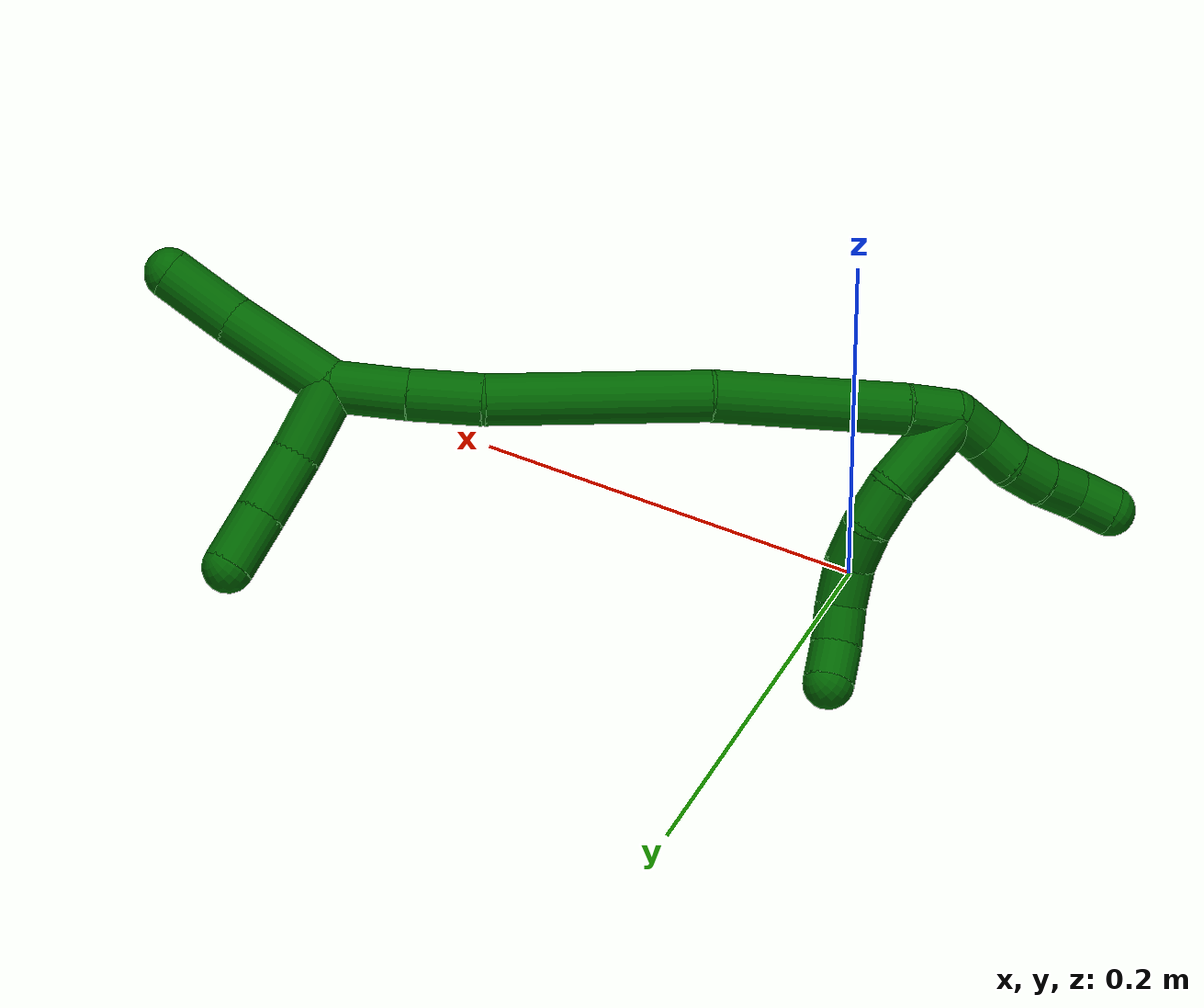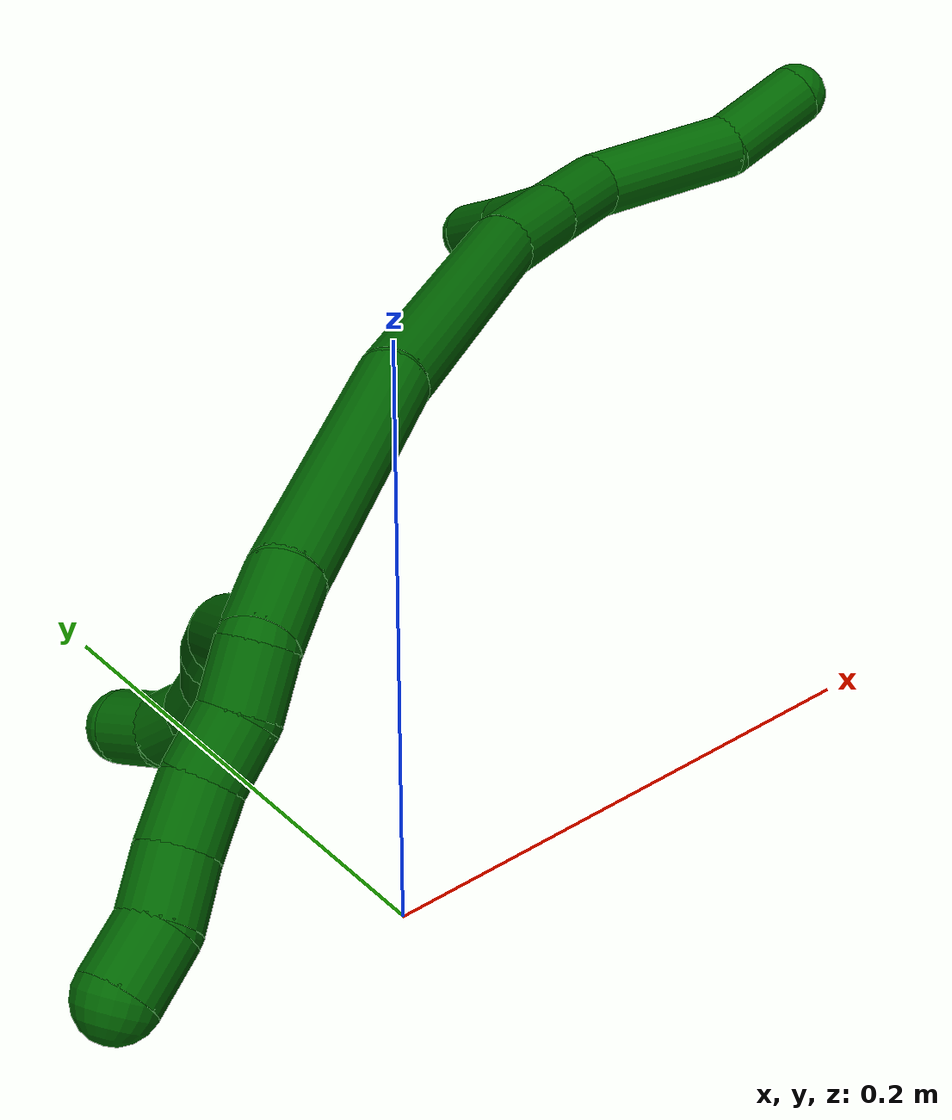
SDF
<sdf version="1.7">
 <world name="default">
  <model name="photoneo_s_sensor">
   <static>1</static>
   <pose>0 0 2 1.57079 1.57079 3.14159</pose>
   <link name="link">
    <inertial><mass>0.1</mass></inertial>
    <sensor name="sensor" type="depth">
     <update_rate>30</update_rate>
     <camera>
      <horizontal_fov>1.22</horizontal_fov>
      <image><width>1920</width><height>1200</height><format>B8G8R8</format></image>
      <clip><near>0.1</near><far>4</far></clip>
      <depth_camera><output>points</output></depth_camera>
     </camera>
     <plugin name="camera_plugin" filename="libgazebo_ros_depth_camera.so">
      <baseline>0.2</baseline>
      <alwaysOn>1</alwaysOn>
      <updateRate>0.0</updateRate>
      <cameraName>camera_ir</cameraName>
      <imageTopicName>/camera/color/image_raw</imageTopicName>
      <cameraInfoTopicName>/camera/color/camera_info</cameraInfoTopicName>
      <depthImageTopicName>/camera/depth/image_raw</depthImageTopicName>
      <depthImageCameraInfoTopicName>/camera/depth/camera_info</depthImageCameraInfoTopicName>
      <pointCloudTopicName>/camera/depth/points</pointCloudTopicName>
      <frameName>fr_optical</frameName>
      <pointCloudCutoff>0.1</pointCloudCutoff>
      <pointCloudCutoffMax>2.0</pointCloudCutoffMax>
      <distortionK1>0</distortionK1>
      <distortionK2>0</distortionK2>
      <distortionK3>0</distortionK3>
      <distortionT1>0</distortionT1>
      <distortionT2>0</distortionT2>
      <CxPrime>0</CxPrime>
      <Cx>0</Cx>
      <Cy>0</Cy>
      <focalLength>0</focalLength>
      <hackBaseline>0</hackBaseline>
     </plugin>
    </sensor>
   </link>
  </model>
  <model name="bin">
   <static>1</static>
   <link name="bottom">
    <collision name="collision-bottom">
     <pose>0 0 -0.01 0 -0 0</pose>
     <geometry><box><size>0.8 0.6 0.02</size></box></geometry>
     <surface>
      <friction><ode><mu>100</mu><mu2>100</mu2></ode></friction>
      <contact><collide_bitmask>65535</collide_bitmask></contact>
     </surface>
    </collision>
   </link>
   <link name="west_wall">
    <collision name="collision-west_wall">
     <pose>-0.41 0 0.1 0 -0 0</pose>
     <geometry><box><size>0.02 0.6 0.2</size></box></geometry>
     <surface>
      <friction><ode><mu>100</mu><mu2>100</mu2></ode></friction>
      <contact><collide_bitmask>65535</collide_bitmask></contact>
     </surface>
    </collision>
   </link>
   <link name="east_wall">
    <collision name="collision-east_wall">
     <pose>0.41 0 0.1 0 -0 0</pose>
     <geometry><box><size>0.02 0.6 0.2</size></box></geometry>
     <surface>
      <friction><ode><mu>100</mu><mu2>100</mu2></ode></friction>
      <contact><collide_bitmask>65535</collide_bitmask></contact>
     </surface>
    </collision>
   </link>
   <link name="south_wall">
    <collision name="collision-south_wall">
     <pose>0 -0.31 0.1 0 -0 0</pose>
     <geometry><box><size>0.8 0.02 0.2</size></box></geometry>
     <surface>
      <friction><ode><mu>100</mu><mu2>100</mu2></ode></friction>
      <contact><collide_bitmask>65535</collide_bitmask></contact>
     </surface>
    </collision>
   </link>
   <link name="north_wall">
    <collision name="collision-north_wall">
     <pose>0 0.31 0.1 0 -0 0</pose>
     <geometry><box><size>0.8 0.02 0.2</size></box></geometry>
     <surface>
      <friction><ode><mu>100</mu><mu2>100</mu2></ode></friction>
      <contact><collide_bitmask>65535</collide_bitmask></contact>
     </surface>
    </collision>
   </link>
  </model>
  <model name="6">
   <static>0</static>
   <link name="6">
    <collision name="collision-cylinder-e_1_2_8">
     <pose>0.009165 -0.020526 -0.002473 1.69072 0.417254 0.468725</pose>
     <geometry><cylinder><radius>0.0125</radius><length>0.04523</length></cylinder></geometry>
     <surface>
      <friction><ode><mu>1.16</mu><mu2>1.16</mu2><slip1>0</slip1><slip2>0</slip2></ode></friction>
      <contact><ode><kp>1e+06</kp><kd>1</kd><max_vel>0</max_vel><min_depth>0.001</min_depth></ode></contact>
     </surface>
    </collision>
    <visual name="visual-cylinder-e_1_2_8">
     <pose>0.009165 -0.020526 -0.002473 1.69072 0.417254 0.468725</pose>
     <geometry><cylinder><radius>0.0125</radius><length>0.04523</length></cylinder></geometry>
     <material><ambient>0 0.392157 0.003922 1</ambient></material>
    </visual>
    <collision name="collision-cylinder-e_2_8_9">
     <pose>0.02428 -0.050685 -0.003341 1.40555 0.547247 0.466802</pose>
     <geometry><cylinder><radius>0.0125</radius><length>0.02287</length></cylinder></geometry>
     <surface>
      <friction><ode><mu>1.16</mu><mu2>1.16</mu2><slip1>0</slip1><slip2>0</slip2></ode></friction>
      <contact><ode><kp>1e+06</kp><kd>1</kd><max_vel>0</max_vel><min_depth>0.001</min_depth></ode></contact>
     </surface>
    </collision>
    <visual name="visual-cylinder-e_2_8_9">
     <pose>0.02428 -0.050685 -0.003341 1.40555 0.547247 0.466802</pose>
     <geometry><cylinder><radius>0.0125</radius><length>0.02287</length></cylinder></geometry>
     <material><ambient>0 0.392157 0.003922 1</ambient></material>
    </visual>
    <collision name="collision-cylinder-e_3_9_10">
     <pose>0.036653 -0.067428 0.002417 1.04242 0.662488 0.389917</pose>
     <geometry><cylinder><radius>0.0125</radius><length>0.020886</length></cylinder></geometry>
     <surface>
      <friction><ode><mu>1.16</mu><mu2>1.16</mu2><slip1>0</slip1><slip2>0</slip2></ode></friction>
      <contact><ode><kp>1e+06</kp><kd>1</kd><max_vel>0</max_vel><min_depth>0.001</min_depth></ode></contact>
     </surface>
    </collision>
    <visual name="visual-cylinder-e_3_9_10">
     <pose>0.036653 -0.067428 0.002417 1.04242 0.662488 0.389917</pose>
     <geometry><cylinder><radius>0.0125</radius><length>0.020886</length></cylinder></geometry>
     <material><ambient>0 0.392157 0.003922 1</ambient></material>
    </visual>
    <collision name="collision-cylinder-e_4_10_11">
     <pose>0.046706 -0.083134 0.011252 1.07184 0.355046 0.212302</pose>
     <geometry><cylinder><radius>0.0125</radius><length>0.02088</length></cylinder></geometry>
     <surface>
      <friction><ode><mu>1.16</mu><mu2>1.16</mu2><slip1>0</slip1><slip2>0</slip2></ode></friction>
      <contact><ode><kp>1e+06</kp><kd>1</kd><max_vel>0</max_vel><min_depth>0.001</min_depth></ode></contact>
     </surface>
    </collision>
    <visual name="visual-cylinder-e_4_10_11">
     <pose>0.046706 -0.083134 0.011252 1.07184 0.355046 0.212302</pose>
     <geometry><cylinder><radius>0.0125</radius><length>0.02088</length></cylinder></geometry>
     <material><ambient>0 0.392157 0.003922 1</ambient></material>
    </visual>
    <collision name="collision-cylinder-e_5_11_12">
     <pose>0.05092 -0.101104 0.019493 1.20816 0.058316 0.040252</pose>
     <geometry><cylinder><radius>0.0125</radius><length>0.020087</length></cylinder></geometry>
     <surface>
      <friction><ode><mu>1.16</mu><mu2>1.16</mu2><slip1>0</slip1><slip2>0</slip2></ode></friction>
      <contact><ode><kp>1e+06</kp><kd>1</kd><max_vel>0</max_vel><min_depth>0.001</min_depth></ode></contact>
     </surface>
    </collision>
    <visual name="visual-cylinder-e_5_11_12">
     <pose>0.05092 -0.101104 0.019493 1.20816 0.058316 0.040252</pose>
     <geometry><cylinder><radius>0.0125</radius><length>0.020087</length></cylinder></geometry>
     <material><ambient>0 0.392157 0.003922 1</ambient></material>
    </visual>
    <collision name="collision-cylinder-e_6_12_6">
     <pose>0.050097 -0.120369 0.023857 1.4893 -0.140992 -0.129978</pose>
     <geometry><cylinder><radius>0.0125</radius><length>0.020047</length></cylinder></geometry>
     <surface>
      <friction><ode><mu>1.16</mu><mu2>1.16</mu2><slip1>0</slip1><slip2>0</slip2></ode></friction>
      <contact><ode><kp>1e+06</kp><kd>1</kd><max_vel>0</max_vel><min_depth>0.001</min_depth></ode></contact>
     </surface>
    </collision>
    <visual name="visual-cylinder-e_6_12_6">
     <pose>0.050097 -0.120369 0.023857 1.4893 -0.140992 -0.129978</pose>
     <geometry><cylinder><radius>0.0125</radius><length>0.020047</length></cylinder></geometry>
     <material><ambient>0 0.392157 0.003922 1</ambient></material>
    </visual>
    <collision name="collision-cylinder-e_1_2_13">
     <pose>3e-05 -1e-05 0.01 0.000991 0.003029 2e-06</pose>
     <geometry><cylinder><radius>0.0125</radius><length>0.02</length></cylinder></geometry>
     <surface>
      <friction><ode><mu>1.16</mu><mu2>1.16</mu2><slip1>0</slip1><slip2>0</slip2></ode></friction>
      <contact><ode><kp>1e+06</kp><kd>1</kd><max_vel>0</max_vel><min_depth>0.001</min_depth></ode></contact>
     </surface>
    </collision>
    <visual name="visual-cylinder-e_1_2_13">
     <pose>3e-05 -1e-05 0.01 0.000991 0.003029 2e-06</pose>
     <geometry><cylinder><radius>0.0125</radius><length>0.02</length></cylinder></geometry>
     <material><ambient>0 0.392157 0.003922 1</ambient></material>
    </visual>
    <collision name="collision-cylinder-e_2_13_14">
     <pose>-0.001757 -0.001538 0.029716 0.154999 -0.182743 -0.01423</pose>
     <geometry><cylinder><radius>0.0125</radius><length>0.02</length></cylinder></geometry>
     <surface>
      <friction><ode><mu>1.16</mu><mu2>1.16</mu2><slip1>0</slip1><slip2>0</slip2></ode></friction>
      <contact><ode><kp>1e+06</kp><kd>1</kd><max_vel>0</max_vel><min_depth>0.001</min_depth></ode></contact>
     </surface>
    </collision>
    <visual name="visual-cylinder-e_2_13_14">
     <pose>-0.001757 -0.001538 0.029716 0.154999 -0.182743 -0.01423</pose>
     <geometry><cylinder><radius>0.0125</radius><length>0.02</length></cylinder></geometry>
     <material><ambient>0 0.392157 0.003922 1</ambient></material>
    </visual>
    <collision name="collision-cylinder-e_3_14_15">
     <pose>-0.004938 -0.002222 0.049303 -0.084274 -0.136799 0.005777</pose>
     <geometry><cylinder><radius>0.0125</radius><length>0.02</length></cylinder></geometry>
     <surface>
      <friction><ode><mu>1.16</mu><mu2>1.16</mu2><slip1>0</slip1><slip2>0</slip2></ode></friction>
      <contact><ode><kp>1e+06</kp><kd>1</kd><max_vel>0</max_vel><min_depth>0.001</min_depth></ode></contact>
     </surface>
    </collision>
    <visual name="visual-cylinder-e_3_14_15">
     <pose>-0.004938 -0.002222 0.049303 -0.084274 -0.136799 0.005777</pose>
     <geometry><cylinder><radius>0.0125</radius><length>0.02</length></cylinder></geometry>
     <material><ambient>0 0.392157 0.003922 1</ambient></material>
    </visual>
    <collision name="collision-cylinder-e_4_15_16">
     <pose>-0.007572 0.000727 0.068865 -0.214902 -0.127398 0.01376</pose>
     <geometry><cylinder><radius>0.0125</radius><length>0.02</length></cylinder></geometry>
     <surface>
      <friction><ode><mu>1.16</mu><mu2>1.16</mu2><slip1>0</slip1><slip2>0</slip2></ode></friction>
      <contact><ode><kp>1e+06</kp><kd>1</kd><max_vel>0</max_vel><min_depth>0.001</min_depth></ode></contact>
     </surface>
    </collision>
    <visual name="visual-cylinder-e_4_15_16">
     <pose>-0.007572 0.000727 0.068865 -0.214902 -0.127398 0.01376</pose>
     <geometry><cylinder><radius>0.0125</radius><length>0.02</length></cylinder></geometry>
     <material><ambient>0 0.392157 0.003922 1</ambient></material>
    </visual>
    <collision name="collision-cylinder-e_5_16_5">
     <pose>-0.01239 0.003332 0.087892 -0.052365 -0.362663 0.009603</pose>
     <geometry><cylinder><radius>0.0125</radius><length>0.02</length></cylinder></geometry>
     <surface>
      <friction><ode><mu>1.16</mu><mu2>1.16</mu2><slip1>0</slip1><slip2>0</slip2></ode></friction>
      <contact><ode><kp>1e+06</kp><kd>1</kd><max_vel>0</max_vel><min_depth>0.001</min_depth></ode></contact>
     </surface>
    </collision>
    <visual name="visual-cylinder-e_5_16_5">
     <pose>-0.01239 0.003332 0.087892 -0.052365 -0.362663 0.009603</pose>
     <geometry><cylinder><radius>0.0125</radius><length>0.02</length></cylinder></geometry>
     <material><ambient>0 0.392157 0.003922 1</ambient></material>
    </visual>
    <collision name="collision-cylinder-e_1_2_17">
     <pose>0.004563 -0.004383 -0.010748 2.75436 0.374545 1.53668</pose>
     <geometry><cylinder><radius>0.0125</radius><length>0.024944</length></cylinder></geometry>
     <surface>
      <friction><ode><mu>1.16</mu><mu2>1.16</mu2><slip1>0</slip1><slip2>0</slip2></ode></friction>
      <contact><ode><kp>1e+06</kp><kd>1</kd><max_vel>0</max_vel><min_depth>0.001</min_depth></ode></contact>
     </surface>
    </collision>
    <visual name="visual-cylinder-e_1_2_17">
     <pose>0.004563 -0.004383 -0.010748 2.75436 0.374545 1.53668</pose>
     <geometry><cylinder><radius>0.0125</radius><length>0.024944</length></cylinder></geometry>
     <material><ambient>0 0.392157 0.003922 1</ambient></material>
    </visual>
    <collision name="collision-cylinder-e_2_17_18">
     <pose>0.031604 -0.026118 -0.059642 2.71469 0.492327 1.71799</pose>
     <geometry><cylinder><radius>0.0125</radius><length>0.095111</length></cylinder></geometry>
     <surface>
      <friction><ode><mu>1.16</mu><mu2>1.16</mu2><slip1>0</slip1><slip2>0</slip2></ode></friction>
      <contact><ode><kp>1e+06</kp><kd>1</kd><max_vel>0</max_vel><min_depth>0.001</min_depth></ode></contact>
     </surface>
    </collision>
    <visual name="visual-cylinder-e_2_17_18">
     <pose>0.031604 -0.026118 -0.059642 2.71469 0.492327 1.71799</pose>
     <geometry><cylinder><radius>0.0125</radius><length>0.095111</length></cylinder></geometry>
     <material><ambient>0 0.392157 0.003922 1</ambient></material>
    </visual>
    <collision name="collision-cylinder-e_3_18_19">
     <pose>0.085816 -0.064503 -0.135779 2.63596 0.631093 1.80268</pose>
     <geometry><cylinder><radius>0.0125</radius><length>0.107568</length></cylinder></geometry>
     <surface>
      <friction><ode><mu>1.16</mu><mu2>1.16</mu2><slip1>0</slip1><slip2>0</slip2></ode></friction>
      <contact><ode><kp>1e+06</kp><kd>1</kd><max_vel>0</max_vel><min_depth>0.001</min_depth></ode></contact>
     </surface>
    </collision>
    <visual name="visual-cylinder-e_3_18_19">
     <pose>0.085816 -0.064503 -0.135779 2.63596 0.631093 1.80268</pose>
     <geometry><cylinder><radius>0.0125</radius><length>0.107568</length></cylinder></geometry>
     <material><ambient>0 0.392157 0.003922 1</ambient></material>
    </visual>
    <collision name="collision-cylinder-e_4_19_20">
     <pose>0.130068 -0.090052 -0.185654 2.77847 0.777626 2.299</pose>
     <geometry><cylinder><radius>0.0125</radius><length>0.035684</length></cylinder></geometry>
     <surface>
      <friction><ode><mu>1.16</mu><mu2>1.16</mu2><slip1>0</slip1><slip2>0</slip2></ode></friction>
      <contact><ode><kp>1e+06</kp><kd>1</kd><max_vel>0</max_vel><min_depth>0.001</min_depth></ode></contact>
     </surface>
    </collision>
    <visual name="visual-cylinder-e_4_19_20">
     <pose>0.130068 -0.090052 -0.185654 2.77847 0.777626 2.299</pose>
     <geometry><cylinder><radius>0.0125</radius><length>0.035684</length></cylinder></geometry>
     <material><ambient>0 0.392157 0.003922 1</ambient></material>
    </visual>
    <collision name="collision-cylinder-e_5_20_1">
     <pose>0.155569 -0.09843 -0.209913 2.83906 0.786179 2.43707</pose>
     <geometry><cylinder><radius>0.0125</radius><length>0.036694</length></cylinder></geometry>
     <surface>
      <friction><ode><mu>1.16</mu><mu2>1.16</mu2><slip1>0</slip1><slip2>0</slip2></ode></friction>
      <contact><ode><kp>1e+06</kp><kd>1</kd><max_vel>0</max_vel><min_depth>0.001</min_depth></ode></contact>
     </surface>
    </collision>
    <visual name="visual-cylinder-e_5_20_1">
     <pose>0.155569 -0.09843 -0.209913 2.83906 0.786179 2.43707</pose>
     <geometry><cylinder><radius>0.0125</radius><length>0.036694</length></cylinder></geometry>
     <material><ambient>0 0.392157 0.003922 1</ambient></material>
    </visual>
    <collision name="collision-cylinder-e_1_1_21">
     <pose>0.19137 -0.092563 -0.2401 -2.64165 0.8438 -2.10725</pose>
     <geometry><cylinder><radius>0.0125</radius><length>0.061076</length></cylinder></geometry>
     <surface>
      <friction><ode><mu>1.16</mu><mu2>1.16</mu2><slip1>0</slip1><slip2>0</slip2></ode></friction>
      <contact><ode><kp>1e+06</kp><kd>1</kd><max_vel>0</max_vel><min_depth>0.001</min_depth></ode></contact>
     </surface>
    </collision>
    <visual name="visual-cylinder-e_1_1_21">
     <pose>0.19137 -0.092563 -0.2401 -2.64165 0.8438 -2.10725</pose>
     <geometry><cylinder><radius>0.0125</radius><length>0.061076</length></cylinder></geometry>
     <material><ambient>0 0.392157 0.003922 1</ambient></material>
    </visual>
    <collision name="collision-cylinder-e_2_21_4">
     <pose>0.224742 -0.077778 -0.273462 -2.82726 0.573244 -2.15493</pose>
     <geometry><cylinder><radius>0.0125</radius><length>0.038924</length></cylinder></geometry>
     <surface>
      <friction><ode><mu>1.16</mu><mu2>1.16</mu2><slip1>0</slip1><slip2>0</slip2></ode></friction>
      <contact><ode><kp>1e+06</kp><kd>1</kd><max_vel>0</max_vel><min_depth>0.001</min_depth></ode></contact>
     </surface>
    </collision>
    <visual name="visual-cylinder-e_2_21_4">
     <pose>0.224742 -0.077778 -0.273462 -2.82726 0.573244 -2.15493</pose>
     <geometry><cylinder><radius>0.0125</radius><length>0.038924</length></cylinder></geometry>
     <material><ambient>0 0.392157 0.003922 1</ambient></material>
    </visual>
    <collision name="collision-cylinder-e_1_1_22">
     <pose>0.174188 -0.119984 -0.220601 1.47573 0.307053 0.279548</pose>
     <geometry><cylinder><radius>0.0125</radius><length>0.037288</length></cylinder></geometry>
     <surface>
      <friction><ode><mu>1.16</mu><mu2>1.16</mu2><slip1>0</slip1><slip2>0</slip2></ode></friction>
      <contact><ode><kp>1e+06</kp><kd>1</kd><max_vel>0</max_vel><min_depth>0.001</min_depth></ode></contact>
     </surface>
    </collision>
    <visual name="visual-cylinder-e_1_1_22">
     <pose>0.174188 -0.119984 -0.220601 1.47573 0.307053 0.279548</pose>
     <geometry><cylinder><radius>0.0125</radius><length>0.037288</length></cylinder></geometry>
     <material><ambient>0 0.392157 0.003922 1</ambient></material>
    </visual>
    <collision name="collision-cylinder-e_2_22_23">
     <pose>0.183406 -0.154008 -0.219302 1.59456 0.215913 0.221064</pose>
     <geometry><cylinder><radius>0.0125</radius><length>0.033449</length></cylinder></geometry>
     <surface>
      <friction><ode><mu>1.16</mu><mu2>1.16</mu2><slip1>0</slip1><slip2>0</slip2></ode></friction>
      <contact><ode><kp>1e+06</kp><kd>1</kd><max_vel>0</max_vel><min_depth>0.001</min_depth></ode></contact>
     </surface>
    </collision>
    <visual name="visual-cylinder-e_2_22_23">
     <pose>0.183406 -0.154008 -0.219302 1.59456 0.215913 0.221064</pose>
     <geometry><cylinder><radius>0.0125</radius><length>0.033449</length></cylinder></geometry>
     <material><ambient>0 0.392157 0.003922 1</ambient></material>
    </visual>
    <collision name="collision-cylinder-e_3_23_3">
     <pose>0.1898 -0.184683 -0.220342 1.61624 0.193324 0.202256</pose>
     <geometry><cylinder><radius>0.0125</radius><length>0.029263</length></cylinder></geometry>
     <surface>
      <friction><ode><mu>1.16</mu><mu2>1.16</mu2><slip1>0</slip1><slip2>0</slip2></ode></friction>
      <contact><ode><kp>1e+06</kp><kd>1</kd><max_vel>0</max_vel><min_depth>0.001</min_depth></ode></contact>
     </surface>
    </collision>
    <visual name="visual-cylinder-e_3_23_3">
     <pose>0.1898 -0.184683 -0.220342 1.61624 0.193324 0.202256</pose>
     <geometry><cylinder><radius>0.0125</radius><length>0.029263</length></cylinder></geometry>
     <material><ambient>0 0.392157 0.003922 1</ambient></material>
    </visual>
    <collision name="collision-sphere-3">
     <pose>0.192611 -0.199027 -0.220995 0 -0 0</pose>
     <geometry><sphere><radius>0.0125</radius></sphere></geometry>
     <surface>
      <friction><ode><mu>1.16</mu><mu2>1.16</mu2><slip1>0</slip1><slip2>0</slip2></ode></friction>
      <contact><ode><kp>1e+06</kp><kd>1</kd><max_vel>0</max_vel><min_depth>0.001</min_depth></ode></contact>
     </surface>
    </collision>
    <visual name="visual-sphere-3">
     <pose>0.192611 -0.199027 -0.220995 0 -0 0</pose>
     <geometry><sphere><radius>0.0125</radius></sphere></geometry>
     <material><ambient>0 0.392157 0.003922 1</ambient></material>
    </visual>
    <collision name="collision-sphere-23">
     <pose>0.186989 -0.170339 -0.21969 0 -0 0</pose>
     <geometry><sphere><radius>0.0125</radius></sphere></geometry>
     <surface>
      <friction><ode><mu>1.16</mu><mu2>1.16</mu2><slip1>0</slip1><slip2>0</slip2></ode></friction>
      <contact><ode><kp>1e+06</kp><kd>1</kd><max_vel>0</max_vel><min_depth>0.001</min_depth></ode></contact>
     </surface>
    </collision>
    <visual name="visual-sphere-23">
     <pose>0.186989 -0.170339 -0.21969 0 -0 0</pose>
     <geometry><sphere><radius>0.0125</radius></sphere></geometry>
     <material><ambient>0 0.392157 0.003922 1</ambient></material>
    </visual>
    <collision name="collision-sphere-22">
     <pose>0.179823 -0.137676 -0.218914 0 -0 0</pose>
     <geometry><sphere><radius>0.0125</radius></sphere></geometry>
     <surface>
      <friction><ode><mu>1.16</mu><mu2>1.16</mu2><slip1>0</slip1><slip2>0</slip2></ode></friction>
      <contact><ode><kp>1e+06</kp><kd>1</kd><max_vel>0</max_vel><min_depth>0.001</min_depth></ode></contact>
     </surface>
    </collision>
    <visual name="visual-sphere-22">
     <pose>0.179823 -0.137676 -0.218914 0 -0 0</pose>
     <geometry><sphere><radius>0.0125</radius></sphere></geometry>
     <material><ambient>0 0.392157 0.003922 1</ambient></material>
    </visual>
    <collision name="collision-sphere-4">
     <pose>0.235298 -0.072722 -0.289012 0 -0 0</pose>
     <geometry><sphere><radius>0.0125</radius></sphere></geometry>
     <surface>
      <friction><ode><mu>1.16</mu><mu2>1.16</mu2><slip1>0</slip1><slip2>0</slip2></ode></friction>
      <contact><ode><kp>1e+06</kp><kd>1</kd><max_vel>0</max_vel><min_depth>0.001</min_depth></ode></contact>
     </surface>
    </collision>
    <visual name="visual-sphere-4">
     <pose>0.235298 -0.072722 -0.289012 0 -0 0</pose>
     <geometry><sphere><radius>0.0125</radius></sphere></geometry>
     <material><ambient>0 0.392157 0.003922 1</ambient></material>
    </visual>
    <collision name="collision-sphere-21">
     <pose>0.214187 -0.082833 -0.257912 0 -0 0</pose>
     <geometry><sphere><radius>0.0125</radius></sphere></geometry>
     <surface>
      <friction><ode><mu>1.16</mu><mu2>1.16</mu2><slip1>0</slip1><slip2>0</slip2></ode></friction>
      <contact><ode><kp>1e+06</kp><kd>1</kd><max_vel>0</max_vel><min_depth>0.001</min_depth></ode></contact>
     </surface>
    </collision>
    <visual name="visual-sphere-21">
     <pose>0.214187 -0.082833 -0.257912 0 -0 0</pose>
     <geometry><sphere><radius>0.0125</radius></sphere></geometry>
     <material><ambient>0 0.392157 0.003922 1</ambient></material>
    </visual>
    <collision name="collision-sphere-1">
     <pose>0.168552 -0.102292 -0.222288 0 -0 0</pose>
     <geometry><sphere><radius>0.0125</radius></sphere></geometry>
     <surface>
      <friction><ode><mu>1.16</mu><mu2>1.16</mu2><slip1>0</slip1><slip2>0</slip2></ode></friction>
      <contact><ode><kp>1e+06</kp><kd>1</kd><max_vel>0</max_vel><min_depth>0.001</min_depth></ode></contact>
     </surface>
    </collision>
    <visual name="visual-sphere-1">
     <pose>0.168552 -0.102292 -0.222288 0 -0 0</pose>
     <geometry><sphere><radius>0.0125</radius></sphere></geometry>
     <material><ambient>0 0.392157 0.003922 1</ambient></material>
    </visual>
    <collision name="collision-sphere-12">
     <pose>0.051506 -0.110478 0.02305 0 -0 0</pose>
     <geometry><sphere><radius>0.0125</radius></sphere></geometry>
     <surface>
      <friction><ode><mu>1.16</mu><mu2>1.16</mu2><slip1>0</slip1><slip2>0</slip2></ode></friction>
      <contact><ode><kp>1e+06</kp><kd>1</kd><max_vel>0</max_vel><min_depth>0.001</min_depth></ode></contact>
     </surface>
    </collision>
    <visual name="visual-sphere-12">
     <pose>0.051506 -0.110478 0.02305 0 -0 0</pose>
     <geometry><sphere><radius>0.0125</radius></sphere></geometry>
     <material><ambient>0 0.392157 0.003922 1</ambient></material>
    </visual>
    <collision name="collision-sphere-11">
     <pose>0.050335 -0.091729 0.015936 0 -0 0</pose>
     <geometry><sphere><radius>0.0125</radius></sphere></geometry>
     <surface>
      <friction><ode><mu>1.16</mu><mu2>1.16</mu2><slip1>0</slip1><slip2>0</slip2></ode></friction>
      <contact><ode><kp>1e+06</kp><kd>1</kd><max_vel>0</max_vel><min_depth>0.001</min_depth></ode></contact>
     </surface>
    </collision>
    <visual name="visual-sphere-11">
     <pose>0.050335 -0.091729 0.015936 0 -0 0</pose>
     <geometry><sphere><radius>0.0125</radius></sphere></geometry>
     <material><ambient>0 0.392157 0.003922 1</ambient></material>
    </visual>
    <collision name="collision-sphere-10">
     <pose>0.043076 -0.074539 0.006568 0 -0 0</pose>
     <geometry><sphere><radius>0.0125</radius></sphere></geometry>
     <surface>
      <friction><ode><mu>1.16</mu><mu2>1.16</mu2><slip1>0</slip1><slip2>0</slip2></ode></friction>
      <contact><ode><kp>1e+06</kp><kd>1</kd><max_vel>0</max_vel><min_depth>0.001</min_depth></ode></contact>
     </surface>
    </collision>
    <visual name="visual-sphere-10">
     <pose>0.043076 -0.074539 0.006568 0 -0 0</pose>
     <geometry><sphere><radius>0.0125</radius></sphere></geometry>
     <material><ambient>0 0.392157 0.003922 1</ambient></material>
    </visual>
    <collision name="collision-sphere-9">
     <pose>0.03023 -0.060317 -0.001734 0 -0 0</pose>
     <geometry><sphere><radius>0.0125</radius></sphere></geometry>
     <surface>
      <friction><ode><mu>1.16</mu><mu2>1.16</mu2><slip1>0</slip1><slip2>0</slip2></ode></friction>
      <contact><ode><kp>1e+06</kp><kd>1</kd><max_vel>0</max_vel><min_depth>0.001</min_depth></ode></contact>
     </surface>
    </collision>
    <visual name="visual-sphere-9">
     <pose>0.03023 -0.060317 -0.001734 0 -0 0</pose>
     <geometry><sphere><radius>0.0125</radius></sphere></geometry>
     <material><ambient>0 0.392157 0.003922 1</ambient></material>
    </visual>
    <collision name="collision-sphere-2">
     <geometry><sphere><radius>0.0125</radius></sphere></geometry>
     <surface>
      <friction><ode><mu>1.16</mu><mu2>1.16</mu2><slip1>0</slip1><slip2>0</slip2></ode></friction>
      <contact><ode><kp>1e+06</kp><kd>1</kd><max_vel>0</max_vel><min_depth>0.001</min_depth></ode></contact>
     </surface>
    </collision>
    <visual name="visual-sphere-2">
     <geometry><sphere><radius>0.0125</radius></sphere></geometry>
     <material><ambient>0 0.392157 0.003922 1</ambient></material>
    </visual>
    <collision name="collision-sphere-19">
     <pose>0.11755 -0.085536 -0.173769 0 -0 0</pose>
     <geometry><sphere><radius>0.0125</radius></sphere></geometry>
     <surface>
      <friction><ode><mu>1.16</mu><mu2>1.16</mu2><slip1>0</slip1><slip2>0</slip2></ode></friction>
      <contact><ode><kp>1e+06</kp><kd>1</kd><max_vel>0</max_vel><min_depth>0.001</min_depth></ode></contact>
     </surface>
    </collision>
    <visual name="visual-sphere-19">
     <pose>0.11755 -0.085536 -0.173769 0 -0 0</pose>
     <geometry><sphere><radius>0.0125</radius></sphere></geometry>
     <material><ambient>0 0.392157 0.003922 1</ambient></material>
    </visual>
    <collision name="collision-sphere-8">
     <pose>0.01833 -0.041053 -0.004947 0 -0 0</pose>
     <geometry><sphere><radius>0.0125</radius></sphere></geometry>
     <surface>
      <friction><ode><mu>1.16</mu><mu2>1.16</mu2><slip1>0</slip1><slip2>0</slip2></ode></friction>
      <contact><ode><kp>1e+06</kp><kd>1</kd><max_vel>0</max_vel><min_depth>0.001</min_depth></ode></contact>
     </surface>
    </collision>
    <visual name="visual-sphere-8">
     <pose>0.01833 -0.041053 -0.004947 0 -0 0</pose>
     <geometry><sphere><radius>0.0125</radius></sphere></geometry>
     <material><ambient>0 0.392157 0.003922 1</ambient></material>
    </visual>
    <collision name="collision-sphere-6">
     <pose>0.048688 -0.13026 0.024665 0 -0 0</pose>
     <geometry><sphere><radius>0.0125</radius></sphere></geometry>
     <surface>
      <friction><ode><mu>1.16</mu><mu2>1.16</mu2><slip1>0</slip1><slip2>0</slip2></ode></friction>
      <contact><ode><kp>1e+06</kp><kd>1</kd><max_vel>0</max_vel><min_depth>0.001</min_depth></ode></contact>
     </surface>
    </collision>
    <visual name="visual-sphere-6">
     <pose>0.048688 -0.13026 0.024665 0 -0 0</pose>
     <geometry><sphere><radius>0.0125</radius></sphere></geometry>
     <material><ambient>0 0.392157 0.003922 1</ambient></material>
    </visual>
    <collision name="collision-sphere-13">
     <pose>6.1e-05 -2e-05 0.02 0 -0 0</pose>
     <geometry><sphere><radius>0.0125</radius></sphere></geometry>
     <surface>
      <friction><ode><mu>1.16</mu><mu2>1.16</mu2><slip1>0</slip1><slip2>0</slip2></ode></friction>
      <contact><ode><kp>1e+06</kp><kd>1</kd><max_vel>0</max_vel><min_depth>0.001</min_depth></ode></contact>
     </surface>
    </collision>
    <visual name="visual-sphere-13">
     <pose>6.1e-05 -2e-05 0.02 0 -0 0</pose>
     <geometry><sphere><radius>0.0125</radius></sphere></geometry>
     <material><ambient>0 0.392157 0.003922 1</ambient></material>
    </visual>
    <collision name="collision-sphere-14">
     <pose>-0.003574 -0.003056 0.039431 0 -0 0</pose>
     <geometry><sphere><radius>0.0125</radius></sphere></geometry>
     <surface>
      <friction><ode><mu>1.16</mu><mu2>1.16</mu2><slip1>0</slip1><slip2>0</slip2></ode></friction>
      <contact><ode><kp>1e+06</kp><kd>1</kd><max_vel>0</max_vel><min_depth>0.001</min_depth></ode></contact>
     </surface>
    </collision>
    <visual name="visual-sphere-14">
     <pose>-0.003574 -0.003056 0.039431 0 -0 0</pose>
     <geometry><sphere><radius>0.0125</radius></sphere></geometry>
     <material><ambient>0 0.392157 0.003922 1</ambient></material>
    </visual>
    <collision name="collision-sphere-15">
     <pose>-0.006301 -0.001388 0.059174 0 -0 0</pose>
     <geometry><sphere><radius>0.0125</radius></sphere></geometry>
     <surface>
      <friction><ode><mu>1.16</mu><mu2>1.16</mu2><slip1>0</slip1><slip2>0</slip2></ode></friction>
      <contact><ode><kp>1e+06</kp><kd>1</kd><max_vel>0</max_vel><min_depth>0.001</min_depth></ode></contact>
     </surface>
    </collision>
    <visual name="visual-sphere-15">
     <pose>-0.006301 -0.001388 0.059174 0 -0 0</pose>
     <geometry><sphere><radius>0.0125</radius></sphere></geometry>
     <material><ambient>0 0.392157 0.003922 1</ambient></material>
    </visual>
    <collision name="collision-sphere-16">
     <pose>-0.008842 0.002842 0.078556 0 -0 0</pose>
     <geometry><sphere><radius>0.0125</radius></sphere></geometry>
     <surface>
      <friction><ode><mu>1.16</mu><mu2>1.16</mu2><slip1>0</slip1><slip2>0</slip2></ode></friction>
      <contact><ode><kp>1e+06</kp><kd>1</kd><max_vel>0</max_vel><min_depth>0.001</min_depth></ode></contact>
     </surface>
    </collision>
    <visual name="visual-sphere-16">
     <pose>-0.008842 0.002842 0.078556 0 -0 0</pose>
     <geometry><sphere><radius>0.0125</radius></sphere></geometry>
     <material><ambient>0 0.392157 0.003922 1</ambient></material>
    </visual>
    <collision name="collision-sphere-5">
     <pose>-0.015938 0.003821 0.097229 0 -0 0</pose>
     <geometry><sphere><radius>0.0125</radius></sphere></geometry>
     <surface>
      <friction><ode><mu>1.16</mu><mu2>1.16</mu2><slip1>0</slip1><slip2>0</slip2></ode></friction>
      <contact><ode><kp>1e+06</kp><kd>1</kd><max_vel>0</max_vel><min_depth>0.001</min_depth></ode></contact>
     </surface>
    </collision>
    <visual name="visual-sphere-5">
     <pose>-0.015938 0.003821 0.097229 0 -0 0</pose>
     <geometry><sphere><radius>0.0125</radius></sphere></geometry>
     <material><ambient>0 0.392157 0.003922 1</ambient></material>
    </visual>
    <collision name="collision-sphere-17">
     <pose>0.009126 -0.008766 -0.021496 0 -0 0</pose>
     <geometry><sphere><radius>0.0125</radius></sphere></geometry>
     <surface>
      <friction><ode><mu>1.16</mu><mu2>1.16</mu2><slip1>0</slip1><slip2>0</slip2></ode></friction>
      <contact><ode><kp>1e+06</kp><kd>1</kd><max_vel>0</max_vel><min_depth>0.001</min_depth></ode></contact>
     </surface>
    </collision>
    <visual name="visual-sphere-17">
     <pose>0.009126 -0.008766 -0.021496 0 -0 0</pose>
     <geometry><sphere><radius>0.0125</radius></sphere></geometry>
     <material><ambient>0 0.392157 0.003922 1</ambient></material>
    </visual>
    <collision name="collision-sphere-18">
     <pose>0.054082 -0.04347 -0.097789 0 -0 0</pose>
     <geometry><sphere><radius>0.0125</radius></sphere></geometry>
     <surface>
      <friction><ode><mu>1.16</mu><mu2>1.16</mu2><slip1>0</slip1><slip2>0</slip2></ode></friction>
      <contact><ode><kp>1e+06</kp><kd>1</kd><max_vel>0</max_vel><min_depth>0.001</min_depth></ode></contact>
     </surface>
    </collision>
    <visual name="visual-sphere-18">
     <pose>0.054082 -0.04347 -0.097789 0 -0 0</pose>
     <geometry><sphere><radius>0.0125</radius></sphere></geometry>
     <material><ambient>0 0.392157 0.003922 1</ambient></material>
    </visual>
    <collision name="collision-sphere-20">
     <pose>0.142586 -0.094568 -0.197539 0 -0 0</pose>
     <geometry><sphere><radius>0.0125</radius></sphere></geometry>
     <surface>
      <friction><ode><mu>1.16</mu><mu2>1.16</mu2><slip1>0</slip1><slip2>0</slip2></ode></friction>
      <contact><ode><kp>1e+06</kp><kd>1</kd><max_vel>0</max_vel><min_depth>0.001</min_depth></ode></contact>
     </surface>
    </collision>
    <visual name="visual-sphere-20">
     <pose>0.142586 -0.094568 -0.197539 0 -0 0</pose>
     <geometry><sphere><radius>0.0125</radius></sphere></geometry>
     <material><ambient>0 0.392157 0.003922 1</ambient></material>
    </visual>
    <inertial>
     <pose>0.087367 -0.066317 -0.101745 0 -0 0</pose>
     <mass>0.75</mass>
     <inertia>
      <ixx>0.000161</ixx>
      <ixy>0</ixy>
      <ixz>0</ixz>
      <iyy>0.000245</iyy>
      <iyz>0</iyz>
      <izz>-5.6e-05</izz>
     </inertia>
    </inertial>
   </link>
   <pose>-0.050709 -0.003264 0.124477 2.70311 0.615195 -0.168401</pose>
  </model>
 </world>
</sdf>
